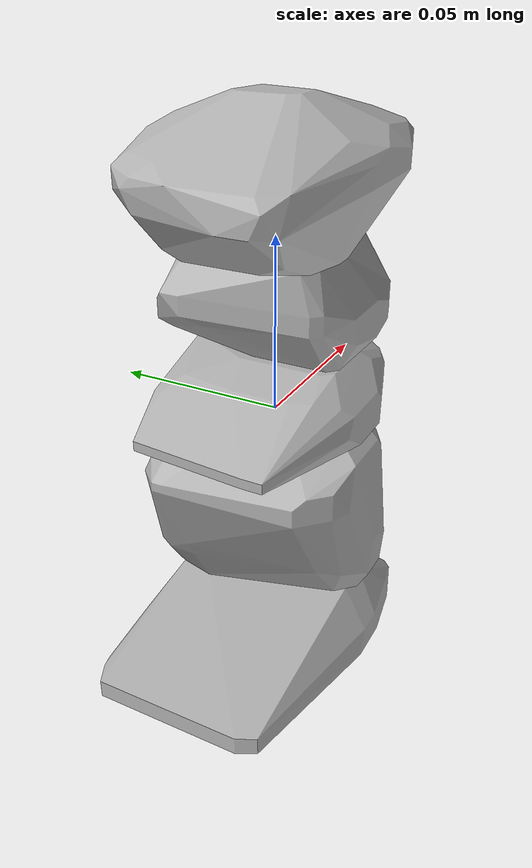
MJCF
<?xml version="1.0" ?>
<mujoco model="agod_24170">
  <asset>
    <material name="default_material" specular="0.5" shininess="0.25" rgba="0.7 0.7 0.7 1"/>
    <mesh name="convex_0_vis" file="visual/convex_0.obj" scale="1.0 1.0 1.0"/>
    <mesh name="convex_0_coll" file="collision/convex_0_coll.obj" scale="1.0 1.0 1.0"/>
    <mesh name="convex_1_vis" file="visual/convex_1.obj" scale="1.0 1.0 1.0"/>
    <mesh name="convex_1_coll" file="collision/convex_1_coll.obj" scale="1.0 1.0 1.0"/>
    <mesh name="convex_2_vis" file="visual/convex_2.obj" scale="1.0 1.0 1.0"/>
    <mesh name="convex_2_coll" file="collision/convex_2_coll.obj" scale="1.0 1.0 1.0"/>
    <mesh name="convex_3_vis" file="visual/convex_3.obj" scale="1.0 1.0 1.0"/>
    <mesh name="convex_3_coll" file="collision/convex_3_coll.obj" scale="1.0 1.0 1.0"/>
    <mesh name="convex_4_vis" file="visual/convex_4.obj" scale="1.0 1.0 1.0"/>
    <mesh name="convex_4_coll" file="collision/convex_4_coll.obj" scale="1.0 1.0 1.0"/>
  </asset>
  <worldbody>
    <body>
      <body name="object">
        <!-- Visual Geometry -->
        <!-- Collision Geometry -->
        <geom type="mesh" mesh="convex_0_vis" material="default_material" conaffinity="0" contype="0" group="1"/>
        <geom type="mesh" mesh="convex_0_coll" solimp="0.998 0.998 0.001" solref="0.001 1" density="100" friction="0.95 0.3 0.1" group="0" rgba="0.8 0.8 0.8 0.0"/>
        <geom type="mesh" mesh="convex_1_vis" material="default_material" conaffinity="0" contype="0" group="1"/>
        <geom type="mesh" mesh="convex_1_coll" solimp="0.998 0.998 0.001" solref="0.001 1" density="100" friction="0.95 0.3 0.1" group="0" rgba="0.8 0.8 0.8 0.0"/>
        <geom type="mesh" mesh="convex_2_vis" material="default_material" conaffinity="0" contype="0" group="1"/>
        <geom type="mesh" mesh="convex_2_coll" solimp="0.998 0.998 0.001" solref="0.001 1" density="100" friction="0.95 0.3 0.1" group="0" rgba="0.8 0.8 0.8 0.0"/>
        <geom type="mesh" mesh="convex_3_vis" material="default_material" conaffinity="0" contype="0" group="1"/>
        <geom type="mesh" mesh="convex_3_coll" solimp="0.998 0.998 0.001" solref="0.001 1" density="100" friction="0.95 0.3 0.1" group="0" rgba="0.8 0.8 0.8 0.0"/>
        <geom type="mesh" mesh="convex_4_vis" material="default_material" conaffinity="0" contype="0" group="1"/>
        <geom type="mesh" mesh="convex_4_coll" solimp="0.998 0.998 0.001" solref="0.001 1" density="100" friction="0.95 0.3 0.1" group="0" rgba="0.8 0.8 0.8 0.0"/>
      </body>
      <site rgba="0 0 0 0" size="0.005" name="bottom_site" pos="0.00000 0.00000 -0.08516"/>
      <site rgba="0 0 0 0" size="0.005" name="top_site" pos="0.00000 0.00000 0.08516"/>
      <site rgba="0 0 0 0" size="0.005" name="horizontal_radius_site" pos="0.05855 0.03193 0.00000"/>
    </body>
  </worldbody>
</mujoco>
